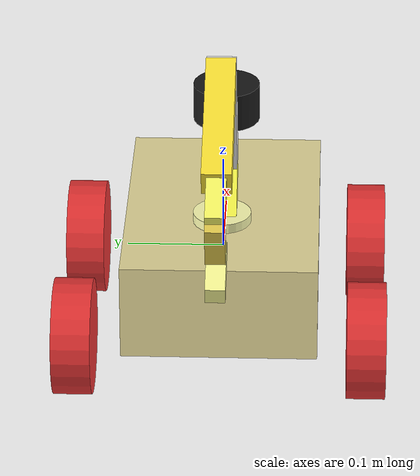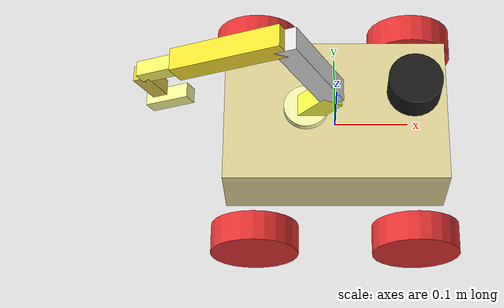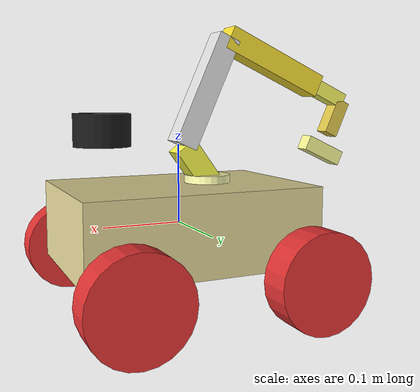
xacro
<?xml version="1.0"?>
<robot xmlns:xacro="http://www.ros.org/wiki/xacro" name="mecanum_rover">

  <!-- ===================  PROPERTIES  =================== -->
  <xacro:property name="chassis_length" value="0.30"/>
  <xacro:property name="chassis_width"  value="0.20"/>
  <xacro:property name="chassis_height" value="0.10"/>

  <xacro:property name="wheel_radius"    value="0.06"/>
  <xacro:property name="wheel_thickness" value="0.04"/>
  <xacro:property name="wheel_base"      value="0.22"/>  <!-- distance front–rear -->
  <xacro:property name="track_width"     value="0.30"/>  <!-- distance left–right -->

  <xacro:property name="arm_base_height" value="${chassis_height/2.0}"/>
  <xacro:property name="lidar_height"    value="0.15"/>

  <!-- some simple inertial helpers -->
  <xacro:macro name="box_inertial" params="mass x y z">
    <inertial>
      <mass value="${mass}"/>
      <!-- approximate inertia of a solid box -->
      <inertia
        ixx="${mass/12.0 * (y*y + z*z)}"
        iyy="${mass/12.0 * (x*x + z*z)}"
        izz="${mass/12.0 * (x*x + y*y)}"
        ixy="0.0" ixz="0.0" iyz="0.0"/>
    </inertial>
  </xacro:macro>

  <xacro:macro name="cyl_inertial" params="mass r h">
    <inertial>
      <mass value="${mass}"/>
      <!-- solid cylinder about its axis (z) -->
      <inertia
        ixx="${mass/12.0 * (3*r*r + h*h)}"
        iyy="${mass/12.0 * (3*r*r + h*h)}"
        izz="${0.5*mass*r*r}"
        ixy="0.0" ixz="0.0" iyz="0.0"/>
    </inertial>
  </xacro:macro>

  <!-- ===============  BASE LINK (CHASSIS)  =============== -->
  <link name="base_link">
    <visual>
      <origin xyz="0 0 0" rpy="0 0 0"/>
      <geometry>
        <box size="${chassis_length} ${chassis_width} ${chassis_height}"/>
      </geometry>
      <material name="chassis_color">
        <color rgba="0.9 0.85 0.6 1.0"/>
      </material>
    </visual>
    <collision>
      <origin xyz="0 0 0" rpy="0 0 0"/>
      <geometry>
        <box size="${chassis_length} ${chassis_width} ${chassis_height}"/>
      </geometry>
    </collision>
    <xacro:box_inertial mass="3.0"
                        x="${chassis_length}"
                        y="${chassis_width}"
                        z="${chassis_height}"/>
  </link>

  <!-- ==================  WHEEL MACRO  ==================== -->
  <xacro:macro name="mecanum_wheel" params="name parent x y">
    <link name="${name}_link">
      <visual>
        <origin xyz="0 0 0" rpy="${pi/2} 0 0"/>
        <geometry>
          <cylinder radius="${wheel_radius}" length="${wheel_thickness}"/>
        </geometry>
        <material name="${name}_mat">
          <color rgba="0.9 0.2 0.2 1.0"/>
        </material>
      </visual>
      <collision>
        <origin xyz="0 0 0" rpy="${pi/2} 0 0"/>  <!-- ADD rotation here too! -->
        <geometry>
          <cylinder radius="${wheel_radius}" length="${wheel_thickness}"/>
        </geometry>
      </collision>
      <xacro:cyl_inertial mass="0.3" r="${wheel_radius}" h="${wheel_thickness}"/>
    </link>

    <joint name="${name}_joint" type="continuous">
      <parent link="${parent}"/>
      <child  link="${name}_link"/>
      <!-- Place wheels at chassis bottom, offset by wheel radius -->
      <origin xyz="${x} ${y} ${-chassis_height/2.0}" rpy="0 0 0"/>
      <!-- rotate around local Y axis -->
      <axis xyz="0 1 0"/>
    </joint>
  </xacro:macro>

  <!-- ============  INSTANTIATE FOUR WHEELS  ============== -->
  <!-- x: front +, back -,  y: left +, right - -->
  <xacro:mecanum_wheel name="front_left_wheel"
                       parent="base_link"
                       x="${ wheel_base/2.0}"
                       y="${ track_width/2.0}"/>

  <xacro:mecanum_wheel name="front_right_wheel"
                       parent="base_link"
                       x="${ wheel_base/2.0}"
                       y="${-track_width/2.0}"/>

  <xacro:mecanum_wheel name="rear_left_wheel"
                       parent="base_link"
                       x="${-wheel_base/2.0}"
                       y="${ track_width/2.0}"/>

  <xacro:mecanum_wheel name="rear_right_wheel"
                       parent="base_link"
                       x="${-wheel_base/2.0}"
                       y="${-track_width/2.0}"/>

    <!-- ====================  LIDAR  ======================== -->
  <link name="lidar_link">
    <visual>
      <origin xyz="0 0 0.06" rpy="0 0 0"/>
      <geometry>
        <cylinder radius="0.035" length="0.04"/>
      </geometry>
      <material name="lidar_mat">
        <color rgba="0.1 0.1 0.1 1.0"/>
      </material>
    </visual>
    <collision>
      <origin xyz="0 -0.12 ${lidar_height}" rpy="0 0 0"/>
      <geometry>
        <cylinder radius="0.035" length="0.04"/>
      </geometry>
    </collision>
    <xacro:cyl_inertial mass="0.2" r="0.035" h="0.04"/>
  </link>

  <joint name="lidar_joint" type="fixed">
    <parent link="base_link"/>
    <child  link="lidar_link"/>
    <origin xyz="0.1 0 0.06" rpy="0 0 0"/>
  </joint>

    <!-- =====================  ARM  ========================= -->
  <!-- Arm mounted on the left side of base -->
  <link name="arm_base_link">
    <visual>
      <origin xyz="0 0 ${chassis_height/2}" rpy="0 0 0"/>
      <geometry>
        <cylinder radius="0.03" length="0.02"/>
      </geometry>
      <material name="arm_base_mat">
        <color rgba="1.0 1.0 0.7 1.0"/>
      </material>
    </visual>
    <collision>
      <origin xyz="0 0.12 ${chassis_height/2}" rpy="0 0 0"/>
      <geometry>
        <cylinder radius="0.03" length="0.02"/>
      </geometry>
    </collision>
    <xacro:cyl_inertial mass="0.2" r="0.03" h="0.02"/>
  </link>

  <joint name="arm_base_joint" type="fixed">
    <parent link="base_link"/>
    <child  link="arm_base_link"/>
    <origin xyz="-0.04 0 0" rpy="0 0 0"/>
  </joint>

  <!-- Link 1: vertical 6 cm -->
  <link name="arm_link_1">
    <visual>
      <origin xyz="0 0 0.03" rpy="0 0 0"/>
      <geometry>
        <box size="0.03 0.03 0.06"/>
      </geometry>
      <material name="arm_color1">
        <color rgba="1.0 1.0 0.3 1.0"/>
      </material>
    </visual>
    <collision>
      <origin xyz="0 0 0.03" rpy="0 0 0"/>
      <geometry>
        <box size="0.03 0.03 0.06"/>
      </geometry>
    </collision>
    <xacro:box_inertial mass="0.3" x="0.03" y="0.03" z="0.06"/>
  </link>

  <joint name="arm_joint_1" type="revolute">
    <parent link="arm_base_link"/>
    <child  link="arm_link_1"/>
    <origin xyz="0 0 ${chassis_height/2}" rpy="0 ${pi/5} 0"/>
    <axis xyz="0 0 1"/>
    <limit lower="-3.14" upper="3.14" effort="5.0" velocity="2.0"/>
    <dynamics damping="0.5" friction="1.0"/>
  </joint>

  <!-- Link 2: vertical 15 cm -->
  <link name="arm_link_2">
    <visual>
      <origin xyz="0 0 0.075" rpy="0 0 0"/>
      <geometry>
        <box size="0.03 0.03 0.15"/>
      </geometry>
      <material name="arm_color2">
        <color rgba="0.9 0.9 0.9 1.0"/>
      </material>
    </visual>
    <collision>
      <origin xyz="0 0 0.075" rpy="0 0 0"/>
      <geometry>
        <box size="0.03 0.03 0.15"/>
      </geometry>
    </collision>
    <xacro:box_inertial mass="0.4" x="0.03" y="0.03" z="0.15"/>
  </link>

  <joint name="arm_joint_2" type="fixed">
    <parent link="arm_link_1"/>
    <child  link="arm_link_2"/>
    <origin xyz="0 0 0.06" rpy="0 -${pi/3} 0"/>
    <axis xyz="0 1 0"/>
    <limit lower="-1.57" upper="1.57" effort="5.0" velocity="2.0"/>
    <dynamics damping="0.5" friction="1.0"/>
  </joint>

  <!-- Link 3: horizontal 15 cm -->
  <link name="arm_link_3">
    <visual>
      <origin xyz="-0.075 0 0" rpy="0 0 0"/>  <!-- Changed from +0.075 to -0.075 -->
      <geometry>
        <box size="0.15 0.03 0.03"/>
      </geometry>
      <material name="arm_color3">
        <color rgba="1.0 0.9 0.2 1.0"/>
      </material>
    </visual>
    <collision>
      <origin xyz="-0.075 0 0" rpy="0 0 0"/>  <!-- Changed from +0.075 to -0.075 -->
      <geometry>
        <box size="0.15 0.03 0.03"/>
      </geometry>
    </collision>
    <xacro:box_inertial mass="0.3" x="0.15" y="0.03" z="0.03"/>
  </link>

  <joint name="arm_joint_3" type="fixed">
    <parent link="arm_link_2"/>
    <child  link="arm_link_3"/>
    <origin xyz="0 0 0.15" rpy="0 0 0"/>
    <axis xyz="0 1 0"/>
    <limit lower="-1.57" upper="1.57" effort="5.0" velocity="2.0"/>
    <dynamics damping="0.5" friction="1.0"/>
  </joint>

  <!-- Link 4: horizontal 5 cm -->
  <link name="arm_link_4">
    <visual>
      <origin xyz="-0.025 0 0" rpy="0 0 0"/>  <!-- Changed from +0.025 to -0.025 -->
      <geometry>
        <box size="0.05 0.02 0.02"/>
      </geometry>
      <material name="arm_color4">
        <color rgba="1.0 1.0 0.4 1.0"/>
      </material>
    </visual>
    <collision>
      <origin xyz="-0.025 0 0" rpy="0 0 0"/>  <!-- Changed from +0.025 to -0.025 -->
      <geometry>
        <box size="0.05 0.02 0.02"/>
      </geometry>
    </collision>
    <xacro:box_inertial mass="0.2" x="0.05" y="0.02" z="0.02"/>
  </link>

  <joint name="arm_joint_4" type="revolute">
    <parent link="arm_link_3"/>
    <child  link="arm_link_4"/>
    <origin xyz="-0.15 0 0" rpy="0 0 0"/>  <!-- Changed from +0.15 to -0.15 -->
    <axis xyz="0 1 0"/>
    <limit lower="-1.57" upper="1.57" effort="4.0" velocity="2.0"/>
    <dynamics damping="0.5" friction="1.0"/>
  </joint>

  <!-- Link 5: vertical 5 cm -->
  <link name="arm_link_5">
    <visual>
      <origin xyz="0 0 0.025" rpy="0 0 0"/>
      <geometry>
        <box size="0.02 0.02 0.05"/>
      </geometry>
      <material name="arm_color5">
        <color rgba="0.9 0.8 0.3 1.0"/>
      </material>
    </visual>
    <collision>
      <origin xyz="0 0 0.025" rpy="0 0 0"/>
      <geometry>
        <box size="0.02 0.02 0.05"/>
      </geometry>
    </collision>
    <xacro:box_inertial mass="0.15" x="0.02" y="0.02" z="0.05"/>
  </link>

  <joint name="arm_joint_5" type="revolute">
    <parent link="arm_link_4"/>
    <child  link="arm_link_5"/>
    <origin xyz="-0.05 0 0" rpy="0 ${pi} 0"/>  <!-- Changed from +0.05 to -0.05 -->
    <axis xyz="0 0 1"/>
    <limit lower="-1.57" upper="1.57" effort="2.0" velocity="2.0"/>
    <dynamics damping="0.5" friction="1.0"/>
  </joint>

  <!-- Gripper -->
  <link name="gripper_link">
    <visual>
      <origin xyz="0 0 0.025" rpy="0 0 0"/>
      <geometry>
        <box size="0.06 0.02 0.02"/>
      </geometry>
      <material name="gripper_color">
        <color rgba="1.0 1.0 0.6 1.0"/>
      </material>
    </visual>
    <collision>
      <origin xyz="0 0 0.025" rpy="0 0 0"/>
      <geometry>
        <box size="0.06 0.02 0.02"/>
      </geometry>
    </collision>
    <xacro:box_inertial mass="0.1" x="0.06" y="0.02" z="0.02"/>
  </link>

  <joint name="gripper_joint" type="fixed">
    <parent link="arm_link_5"/>
    <child  link="gripper_link"/>
    <origin xyz="0 0 0.05" rpy="0 0 0"/>
  </joint>

  <!-- ==================  GAZEBO TAGS  ==================== -->

  <!-- Differential drive using four wheels as 2 pairs -->
  <gazebo>
    <plugin name="gazebo_ros_diff_drive" filename="libgazebo_ros_diff_drive.so">

      <ros>
        <!-- no namespace is fine for now -->
        <namespace>/</namespace>
        <!-- you can actually omit this, default is cmd_vel -->
        <remapping>cmd_vel:=cmd_vel</remapping>
      </ros>

      <!-- how often to update in Hz -->
      <update_rate>50</update_rate>

      <!-- *** IMPORTANT ***: number of wheel pairs -->
      <num_wheel_pairs>2</num_wheel_pairs>

      <!-- wheels: 2 left, 2 right = 2 pairs -->
      <left_joint>front_left_wheel_joint</left_joint>
      <left_joint>rear_left_wheel_joint</left_joint>

      <right_joint>front_right_wheel_joint</right_joint>
      <right_joint>rear_right_wheel_joint</right_joint>

      <!-- kinematics: one entry per pair -->
      <!-- track_width is distance left–right, so OK for separation -->
      <wheel_separation>${track_width}</wheel_separation>
      <wheel_separation>${track_width}</wheel_separation>

      <!-- plugin expects *diameter*, not radius -->
      <wheel_diameter>${2*wheel_radius}</wheel_diameter>
      <wheel_diameter>${2*wheel_radius}</wheel_diameter>

      <!-- limits (you can tweak later) -->
      <max_wheel_torque>5.0</max_wheel_torque>
      <max_wheel_acceleration>0.0</max_wheel_acceleration>

      <!-- topics -->
      <command_topic>cmd_vel</command_topic>
      <odometry_topic>odom</odometry_topic>

      <!-- frames -->
      <odometry_frame>odom</odometry_frame>
      <robot_base_frame>base_link</robot_base_frame>

      <!-- publish odom + TF -->
      <publish_odom>true</publish_odom>
      <publish_odom_tf>true</publish_odom_tf>
      <publish_wheel_tf>true</publish_wheel_tf>

    </plugin>
  </gazebo>

  <!-- LIDAR sensor (LD19-like) -->
  <gazebo reference="lidar_link">
    <sensor type="ray" name="lidar">
      <pose>0 0 ${lidar_height} 0 0 0</pose>
      <update_rate>10</update_rate>
      <visualize>true</visualize>
      <ray>
        <scan>
          <horizontal>
            <samples>360</samples>
            <resolution>1</resolution>
            <min_angle>-3.14159</min_angle>
            <max_angle>3.14159</max_angle>
          </horizontal>
        </scan>
        <range>
          <min>0.12</min>
          <max>12.0</max>
          <resolution>0.01</resolution>
        </range>
      </ray>
      <plugin name="gazebo_ros_laser" filename="libgazebo_ros_ray_sensor.so">
        <ros>
          <namespace>/</namespace>
          <remapping>~/out:=scan</remapping>
        </ros>
        <output_type>sensor_msgs/LaserScan</output_type>
        <frame_name>lidar_link</frame_name>
      </plugin>
    </sensor>
  </gazebo>

</robot>
